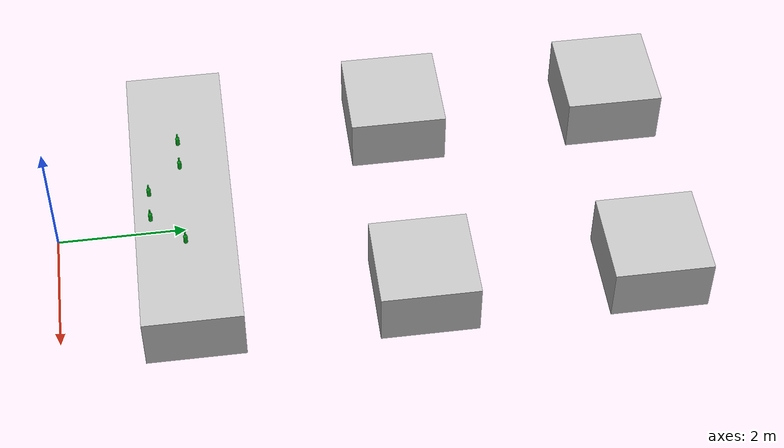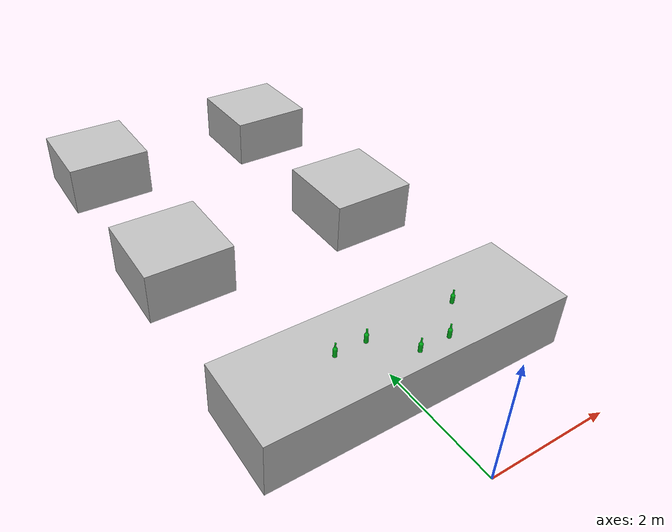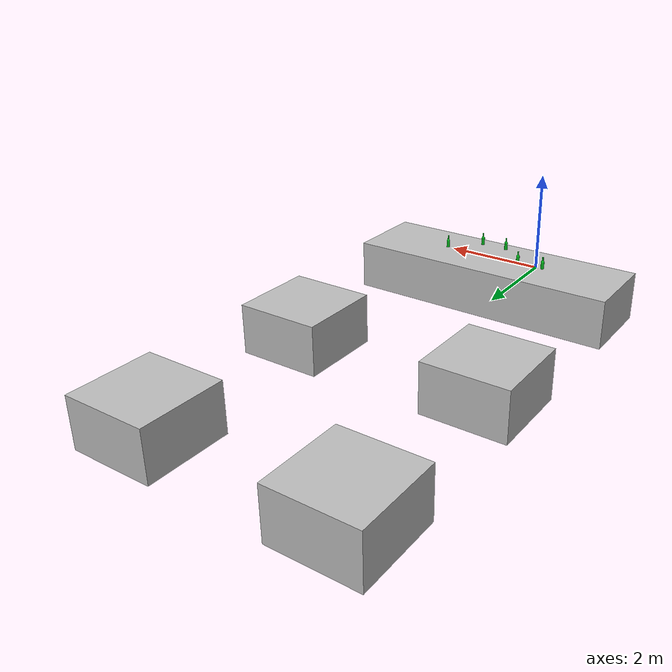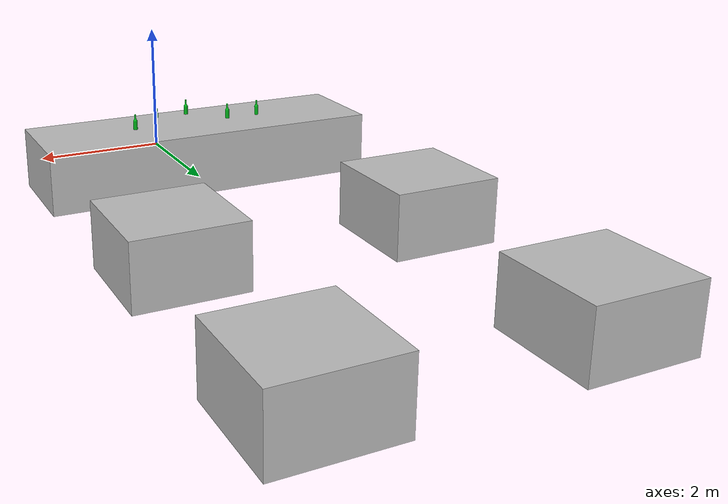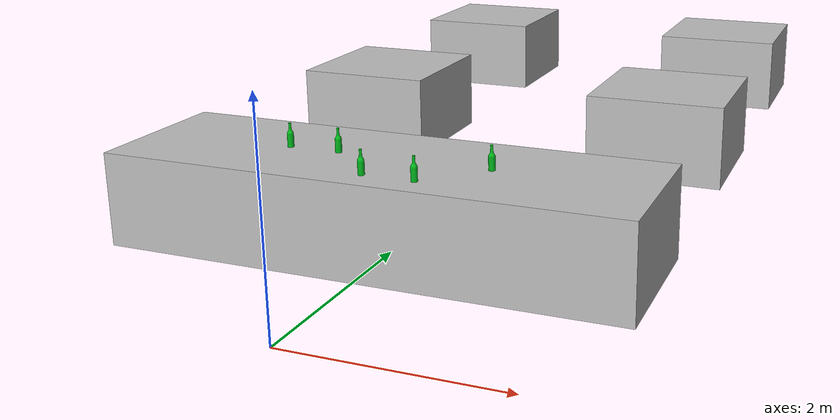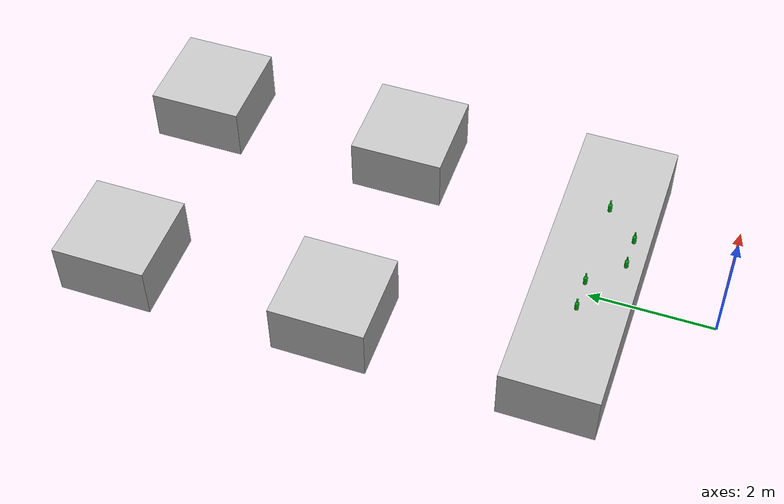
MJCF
<mujoco model="bar">
  <asset>
    <mesh name="beer_bottle" file="./assets/beer_bottle.stl" />
    <material name="glass" rgba="0.0 0.7 0.1 0.9" />
  </asset>
  <worldbody>
    <geom
      name="bar"
      type="box"
      size="2.5 0.75 0.45"
      pos="0 2 0.45"
      rgba="0.75 0.75 0.75 1"
    />
    <site name="bar" pos="0 2 0.45" />
    <geom
      name="table_1"
      type="box"
      size="0.75 0.75 0.45"
      pos="1.75 5.5 0.45"
      rgba="0.75 0.75 0.75 1"
    />
    <site name="table_1" pos="1.75 5.5 0.45" />
    <geom
      name="table_2"
      type="box"
      size="0.75 0.75 0.45"
      pos="-1.75 5.5 0.45"
      rgba="0.75 0.75 0.75 1"
    />
    <site name="table_2" pos="-1.75 5.5 0.45" />
    <geom
      name="table_3"
      type="box"
      size="0.75 0.75 0.45"
      pos="1.75 9 0.45"
      rgba="0.75 0.75 0.75 1"
    />
    <site name="table_3" pos="1.75 9 0.45" />
    <geom
      name="table_4"
      type="box"
      size="0.75 0.75 0.45"
      pos="-1.75 9 0.45"
      rgba="0.75 0.75 0.75 1"
    />
    <site name="table_4" pos="-1.75 9 0.45" />
    <body name="beer_bottle_1" pos="-1 2 0.9">
      <freejoint />
      <site name="beer_bottle_1" />
      <geom
        type="mesh"
        mesh="beer_bottle"
        mass="0.25"
        material="glass"
        friction="0.8 0.2"
      />
    </body>
    <body name="beer_bottle_2" pos="-0.5 2 0.9">
      <freejoint />
      <site name="beer_bottle_2" />
      <geom
        type="mesh"
        mesh="beer_bottle"
        mass="0.25"
        material="glass"
        friction="0.8 0.2"
      />
    </body>
    <body name="beer_bottle_3" pos="0 1.5 0.9">
      <freejoint />
      <site name="beer_bottle_3" />
      <geom
        type="mesh"
        mesh="beer_bottle"
        mass="0.25"
        material="glass"
        friction="0.8 0.2"
      />
    </body>
    <body name="beer_bottle_4" pos="0.5 1.5 0.9">
      <freejoint />
      <site name="beer_bottle_4" />
      <geom
        type="mesh"
        mesh="beer_bottle"
        mass="0.25"
        material="glass"
        friction="0.8 0.2"
      />
    </body>
    <body name="beer_bottle_5" pos="1 2 0.9">
      <freejoint />
      <site name="beer_bottle_5" />
      <geom
        type="mesh"
        mesh="beer_bottle"
        mass="0.25"
        material="glass"
        friction="0.8 0.2"
      />
    </body>
  </worldbody>
</mujoco>
